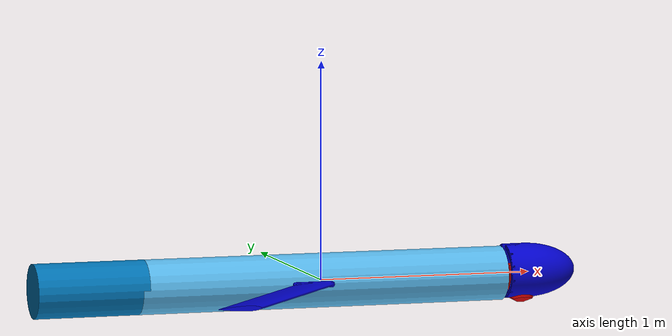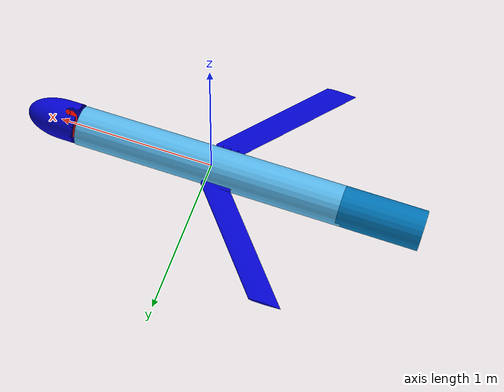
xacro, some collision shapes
<?xml version="1.0"?>
<robot name="model"   xmlns:xacro="http://www.ros.org/wiki/xacro">

  <xacro:include filename="$(find auv2000_description)/urdf/base.xacro" />
  <xacro:include filename="$(find auv2000_description)/urdf/nose.xacro" />
  <xacro:include filename="$(find auv2000_description)/urdf/wing.xacro" />
  <xacro:include filename="$(find auv2000_description)/urdf/tail.xacro" />
  <xacro:include filename="$(find auv2000_description)/urdf/dvl.xacro" />
  <xacro:include filename="$(find auv2000_description)/urdf/propeller.xacro" />
  <xacro:include filename="$(find auv2000_description)/urdf/rudder.xacro" />
  <xacro:include filename="$(find auv2000_description)/urdf/mass_shifter.xacro" />
  <xacro:include filename="$(find auv2000_description)/urdf/irm1.xacro" />
  <xacro:include filename="$(find auv2000_description)/urdf/irm2.xacro" />
  <xacro:include filename="$(find auv2000_description)/urdf/piston.xacro" />
   <xacro:include filename="$(find auv2000_description)/urdf/gps_dvl_ins.xacro" />

</robot>

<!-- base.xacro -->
<robot name="base"
       xmlns:xacro="http://www.ros.org/wiki/xacro">
<!-- Written by Ngo An Thuyen HCMUT - ViamLab 3-15-2021-->
<!-- FOOTPRINT -->
  <link name="footprint_link" >
   <inertial>
      <mass value="0.0001" />
      <origin xyz="0 0 0" />
      <inertia ixx="0.0001" ixy="0.0" ixz="0.0"
                iyy="0.0001" iyz="0.0"
                izz="0.0001" />
  </inertial>
        <visual>
            <origin xyz="0 0 0" rpy="0 0 0" />
            <geometry>
                <box size="0.001 0.001 0.001" />
            </geometry>
        </visual>
   </link>
<!-- BASE -->
  <link name="base_link">
    <visual>
      <geometry>
        <mesh filename="package://auv2000_description/dae/hull.dae"/>
      </geometry>

    </visual>
    <!-- AUV Hull -->
    <collision name="Hull">
      <origin xyz="0 0 0" rpy="0 1.570796327 0" />
      <geometry>
        <cylinder length="1.729" radius="0.125" />
      </geometry>
    </collision>

    <inertial>
          <mass value="62.075930259"/>
      <origin xyz="0.155 0 0" rpy=" 0 0 0"/>
      <inertia ixx="0.55947" ixy="0.0" ixz="0.0"
               iyy="15.7677"   iyz="0.0"
               izz="15.7759"/>
    </inertial>
  </link>

  <joint name="base_joint" type ="fixed">
    <parent link="footprint_link"/>
    <child link="base_link"/>
  </joint>

</robot>

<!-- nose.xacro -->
<robot name="nose"
       xmlns:xacro="http://www.ros.org/wiki/xacro">
<!-- Written by Ngo An Thuyen HCMUT - ViamLab 3-15-2021-->

<!-- AUV NOSE -->
  <link name="nose_link">
    <visual>
      <geometry>
        <mesh filename="package://auv2000_description/dae/nose.dae"/>
      </geometry>
    </visual>
    <!-- AUV NOSE -->
    <collision name="NOSE">
      <origin xyz="0 0 0" rpy="0 1.570796327 0" />
      <geometry>
        <cylinder length="0.340" radius="0.125" />
      </geometry>
    </collision>

    <inertial>
      <origin xyz="0 0 0" rpy=" 0 0 0"/>
      <mass value="3.601474921"/>
      <inertia ixx="0.0262728729" ixy="0.0" ixz="0.0"
               iyy="0.3322871894" iyz="0.0"
               izz="0.3345124239"/>
    </inertial>
  </link>

  <joint name="nose_joint" type ="fixed">
    <origin xyz="1.07 0 0" rpy="0 0 0" />
    <parent link="base_link"/>
    <child link="nose_link"/>
  </joint>

</robot>

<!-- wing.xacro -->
<robot name="wing"
       xmlns:xacro="http://www.ros.org/wiki/xacro">
<!-- Written by Ngo An Thuyen HCMUT - ViamLab 3-15-2021-->

<!-- AUV NOSE -->
  <link name="wing_link">
    <visual>
      <geometry>
        <mesh filename="package://auv2000_description/dae/wing.dae"/>
      </geometry>
    </visual>
    <!-- AUV WING/FIN -->
    <collision name="WING">
      <origin xyz="0.22 0 0" rpy="0 0 0" />
      <geometry>
        <box size ="0.72 1.545 0.024" />
      </geometry>
    </collision>

    <inertial>
      <origin xyz="0 0 0" rpy=" 0 0 0"/>
      <mass value="2.860829211"/>
      <inertia ixx="0.628640291364812" ixy="0.0" ixz="0.0"
               iyy="2.952798617930214" iyz="0.0"
               izz="3.581216302633036"/>
    </inertial>
  </link>

  <joint name="wing_joint" type ="fixed">
    <origin xyz="-0.12 0 0" rpy="0 0 0" />
    <parent link="base_link"/>
    <child link="wing_link"/>
  </joint>

</robot>

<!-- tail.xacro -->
<robot name="tail"
       xmlns:xacro="http://www.ros.org/wiki/xacro">
<!-- Written by Ngo An Thuyen HCMUT - ViamLab 3-15-2021-->

<!-- AUV NOSE -->
  <link name="tail_link">
    <visual>
      <geometry>
        <mesh filename="package://auv2000_description/dae/tail.dae"/>
      </geometry>
    </visual>
    <!-- AUV WING/FIN -->
    <collision name="TAIl">
      <origin xyz="0 0 -0.035" rpy="0 1.57 0" />
      <geometry>
        <cylinder length="0.513" radius="0.125" />
      </geometry>
    </collision>

    <inertial>
      <origin xyz="0 0 0" rpy=" 0 0 0"/>
      <mass value="7.676298734"/>
      <inertia ixx="0.043990227443773" ixy="0.0" ixz="0.0"
               iyy="8.098227827004284" iyz="0.0"
               izz="8.079481040403310"/>
    </inertial>
  </link>

  <joint name="tail_joint" type ="fixed">
    <origin xyz="-1.09 0 0.035" rpy="0 0 0" />
    <parent link="base_link"/>
    <child link="tail_link"/>
  </joint>

</robot>

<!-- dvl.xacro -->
<robot name="dvl"
       xmlns:xacro="http://www.ros.org/wiki/xacro">
<!-- Written by Ngo An Thuyen HCMUT - ViamLab 3-15-2021-->

<!-- AUV DVL -->
  <link name="dvl_link">
    <visual>
      <geometry>
        <mesh filename="package://auv2000_description/dae/dvl.dae"/>
      </geometry>
    </visual>
    <!-- AUV DVL -->
    <collision name="DVL">
      <origin xyz="0 0 0" rpy="0 3.14 0" />
      <geometry>
        <cylinder length="0.174" radius="0.063" />
      </geometry>
    </collision>

    <inertial>
      <origin xyz="0 0 0" rpy=" 0 0 0"/>
      <mass value="2.91"/>
      <inertia ixx="0.059655" ixy="0.0" ixz="0.0"
               iyy="0.0110169848022" iyz="0.0"
               izz="0.0617742407073"/>
    </inertial>
  </link>

  <joint name="dvl_joint" type ="fixed">
    <origin xyz="0.96 0 -0.01" rpy="0 3.14 0" />
    <parent link="base_link"/>
    <child link="dvl_link"/>
  </joint>

</robot>

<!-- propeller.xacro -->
<robot name="propeller"
       xmlns:xacro="http://www.ros.org/wiki/xacro">
<!-- Written by Ngo An Thuyen HCMUT - ViamLab 3-15-2021-->

<!-- AUV PROPELLER -->
  <link name="propeller_link">
    <visual>
      <geometry>
        <mesh filename="package://auv2000_description/dae/propeller.dae"/>
      </geometry>
    </visual>
    <!-- AUV PROPELLER -->
    <collision name="PROPELLER">
      <origin xyz="0 0 0" rpy="0 1.57 0" />
      <geometry>
        <cylinder length="0.052" radius="0.0625" />
      </geometry>
    </collision>

    <inertial>
      <origin xyz="0 0 0" rpy=" 0 0 0"/>
      <mass value="0.14"/>
      <inertia ixx="0.03536589225573" ixy="0.0" ixz="0.0"
               iyy="0.03619574038159" iyz="0.0"
               izz="0.00212609181311"/>
    </inertial>
  </link>

  <joint name="propeller_joint" type ="continuous">
    <axis rpy="0 0 0" xyz="1 0 0"/>
    <origin xyz="-1.225 0 0" rpy="0 0 0" />
    <parent link="base_link"/>
    <child link="propeller_link"/>
  </joint>

</robot>

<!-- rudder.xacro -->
<robot name="rudder"
       xmlns:xacro="http://www.ros.org/wiki/xacro">
<!-- Written by Ngo An Thuyen HCMUT - ViamLab 3-15-2021-->

<!-- AUV RUDDER -->
  <link name="rudder_link">
    <visual>
      <geometry>
        <mesh filename="package://auv2000_description/dae/rudder.dae"/>
      </geometry>
    </visual>
    <!-- AUV RUDDER -->
    <collision name="RUDDER">
      <origin xyz="0 0 0" rpy="0 0 3.14" />
      <geometry>
        <box size = "0.065 0.015 0.1" />
      </geometry>
    </collision>

    <inertial>
      <origin xyz="0 0 0" rpy=" 0 0 0"/>
      <mass value="0.086142809"/>
      <inertia ixx="0.00190754981851" ixy="0.0" ixz="0.0"
               iyy="0.00049855719697" iyz="0.0"
               izz="0.00237808757075"/>
    </inertial>
  </link>

  <joint name="rudder_joint" type ="revolute">
    <axis xyz="0 0 1"/>
    <limit effort="0" lower="-1.57" upper="1.57" velocity="0"/>
    <origin xyz="-1.295 0 0" rpy="0 0 3.14" />
    <parent link="base_link"/>
    <child link="rudder_link"/>
  </joint>

</robot>

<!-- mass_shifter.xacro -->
<robot name="mass_shifter"
       xmlns:xacro="http://www.ros.org/wiki/xacro">
<!-- Written by Ngo An Thuyen HCMUT - ViamLab 3-15-2021-->

<!-- AUV MASS SHIFTER -->
  <link name="mass_shifter_link">
    <visual>
      <geometry>
        <mesh filename="package://auv2000_description/dae/mass_shifter.dae"/>
      </geometry>
    </visual>
    <!-- AUV MASS SHIFTER -->
    <collision name="MASS_SHIFTER">
      <origin xyz="0 0 0" rpy="0 1.570796327 0" />
      <geometry>
        <cylinder length="0.087" radius="0.098" />
      </geometry>
    </collision>

    <inertial>
      <origin xyz="0 0 0" rpy=" 0 0 0"/>
      <mass value="7.388178972"/>
       <inertia ixx="0.044331057716505" ixy="0.0" ixz="0.0"
                iyy="2.599774330336140" iyz="0.0"
                izz="2.612228548561526"/>
    </inertial>
  </link>

  <joint name="mass_shifter_joint" type ="prismatic">
    <axis xyz = "1 0 0" />
    <origin xyz="0.0213 0 0" rpy="0 0 0" />
    <parent link="base_link"/>
    <child link="mass_shifter_link"/>

    <safety_controller k_position="100" k_velocity="100" soft_lower_limit="-0.2" soft_upper_limit="0.2"/>
    <limit effort="2000" lower="-0.2" upper="0.2" velocity="200"/>

  </joint>

  <transmission name="trans_mass_shifter">
    <type>transmission_interface/SimpleTransmission</type>
    <joint name="mass_shifter_joint">
        <hardwareInterface>hardware_interface/EffortJointInterface</hardwareInterface>
    </joint>
    <actuator name="motor_mass_shifter">
        <mechanicalReduction>1</mechanicalReduction>
    </actuator>
  </transmission>

</robot>

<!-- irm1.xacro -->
<robot name="irm1"
       xmlns:xacro="http://www.ros.org/wiki/xacro">
<!-- Written by Ngo An Thuyen HCMUT - ViamLab 3-15-2021-->

<!-- AUV INERTIA ROTARY MASS  1-->
  <link name="irm1_link">
    <visual>
      <geometry>
        <mesh filename="package://auv2000_description/dae/irm1.dae"/>
      </geometry>
    </visual>
    <!-- AUV INERTIA ROTARY MASS -->
    <collision name="IRM1">
      <origin xyz="0 0 0" rpy="0 1.570796327 0" />
      <geometry>
        <cylinder length="0.166" radius="0.079" />
      </geometry>
    </collision>

    <inertial>
      <origin xyz="0 0 -0.0626" rpy=" 0 0 0"/>
      <mass value="5.553972790"/>
      <inertia ixx="0.006657740236353" ixy="0.0" ixz="0.0"
               iyy="2.454678883017721" iyz="0.0"
               izz="2.455311107632614"/>
    </inertial>
  </link>

  <joint name="irm1_joint" type ="revolute">
    <origin xyz="0.625 0 0" rpy="0 0 0" />
    <parent link="base_link"/>
    <child link="irm1_link"/>
     <axis xyz = "1 0 0" />
    <safety_controller k_position="100" k_velocity="10000" soft_lower_limit="-0.53" soft_upper_limit="0.53"/>

    <limit lower="-0.53" upper="0.53" effort="1" velocity="1"/>
    <axis xyz = "1 0 0" />
  </joint>

    <transmission name="trans_irm_1">
    <type>transmission_interface/SimpleTransmission</type>
    <joint name="irm1_joint">
        <hardwareInterface>hardware_interface/EffortJointInterface</hardwareInterface>
    </joint>
    <actuator name="motor_irm1">
        <mechanicalReduction>1</mechanicalReduction>
    </actuator>
  </transmission>

  <gazebo reference="irm1_link">
        <turnGravityOff>false</turnGravityOff>
    </gazebo>

</robot>

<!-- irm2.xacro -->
<robot name="irm2"
       xmlns:xacro="http://www.ros.org/wiki/xacro">
<!-- Written by Ngo An Thuyen HCMUT - ViamLab 3-15-2021-->

<!-- AUV INERTIA ROTARY MASS  2 -->
  <link name="irm2_link">
    <visual>
      <geometry>
        <mesh filename="package://auv2000_description/dae/irm2.dae"/>
      </geometry>
    </visual>
    <!-- AUV INERTIA ROTARY MASS -->
    <collision name="IRM2">
      <origin xyz="0 0 0" rpy="0 1.570796327 0" />
      <geometry>
        <cylinder length="0.166" radius="0.079" />
      </geometry>
    </collision>

    <inertial>
      <origin xyz="0 0 -0.0626" rpy=" 0 0 0"/>
      <mass value="5.553972790"/>
      <inertia ixx="0.006657740236353" ixy="0.0" ixz="0.0"
               iyy="2.454678883017721" iyz="0.0"
               izz="2.455311107632614"/>
    </inertial>
  </link>

  <joint name="irm2_joint" type ="revolute">
    <origin xyz="-0.267 0 0" rpy="0 0 0" />
    <parent link="base_link"/>
    <child link="irm2_link"/>
    <safety_controller k_position="100" k_velocity="10000" soft_lower_limit="-0.53" soft_upper_limit="0.53"/>
    <limit lower="-0.53" upper="0.53" effort="1" velocity="1"/>
    <axis xyz = "1 0 0" />
  </joint>

    <transmission name="trans_irm_2">
    <type>transmission_interface/SimpleTransmission</type>
    <joint name="irm2_joint">
        <hardwareInterface>hardware_interface/EffortJointInterface</hardwareInterface>
    </joint>
    <actuator name="motor_irm2">
        <mechanicalReduction>1</mechanicalReduction>
    </actuator>
  </transmission>

</robot>

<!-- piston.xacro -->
<robot name="piston"
       xmlns:xacro="http://www.ros.org/wiki/xacro">
<!-- Written by Ngo An Thuyen HCMUT - ViamLab 4-2-2021-->

<!-- AUV  PISTON CYCLINDER (Ballast) -->
  <link name="piston_link">
    <visual>
      <geometry>
         <cylinder length="0.02" radius="0.08" />
      </geometry>
    </visual>
    <!-- AAUV  PISTON CYCLINDER (Ballast) -->
    <collision name="piston">
      <origin xyz="0 0 0" rpy="0 1.570796327 0" />
      <geometry>
        <cylinder length="0.02" radius="0.08" />
      </geometry>
    </collision>

    <inertial>
      <origin xyz="0 0 0" rpy=" 0 0 0"/>
      <mass value="0.0001"/>
      <inertia ixx="0.0001" ixy="0.0" ixz="0.0"
               iyy="0.0001" iyz="0.0"
               izz="0.0001"/>
    </inertial>
  </link>

  <joint name="piston_joint" type ="prismatic">
    <origin xyz="0.405 0 0" rpy="0 1.57 0" />
    <parent link="base_link"/>
    <child link="piston_link"/>
     <axis xyz = "0 0 1" />
    <safety_controller k_position="100" k_velocity="10000" soft_lower_limit="0" soft_upper_limit="0.08"/>

    <limit lower="0" upper="0.08" effort="0" velocity="0"/>
    <axis xyz = "0 0 1" />
  </joint>

</robot>

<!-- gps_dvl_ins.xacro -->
<robot name="imu"
       xmlns:xacro="http://www.ros.org/wiki/xacro">

<!-- GPS/INS -->
  <link name="gps_ins_link">
    <visual>
      <origin xyz="0 0 0" rpy="0 0 0" />
      <geometry>
        <box size="0.07 0.06 0.05" />
      </geometry>
    </visual>
    <collision>
      <origin xyz="0 0 0" rpy="0 0 0" />
      <geometry>
        <box size="0.07 0.06 0.05" />
      </geometry>
    </collision>
    <inertial>
      <mass value="0.068" />
      <origin xyz="0 0 0" />
            <inertia ixx="0.000006657740236353" ixy="0.0" ixz="0.0"
               iyy="0.00000002454678883017721" iyz="0.0"
               izz="0.0000000002455311107632614"/>
    </inertial>
  </link>

  <joint name="gps_ins_joint" type="fixed">
    <origin xyz="0 0.0 0" rpy="0 0 0" />
    <parent link="base_link" />
    <child link="gps_ins_link" />
  </joint>

  <link name="gps_ins_point_link" />

  <joint name="imu_point_joint" type="fixed">
    <origin xyz="0 0 0" rpy="${pi} 0 0" />
    <parent link="gps_ins_link" />
    <child link="gps_ins_point_link" />
  </joint>

</robot>
